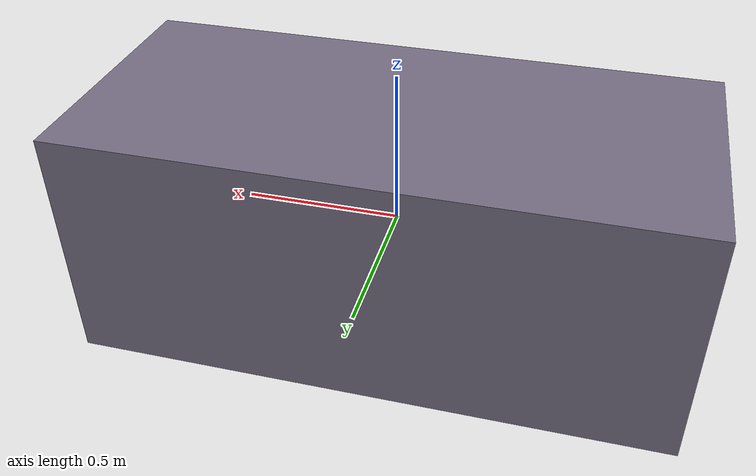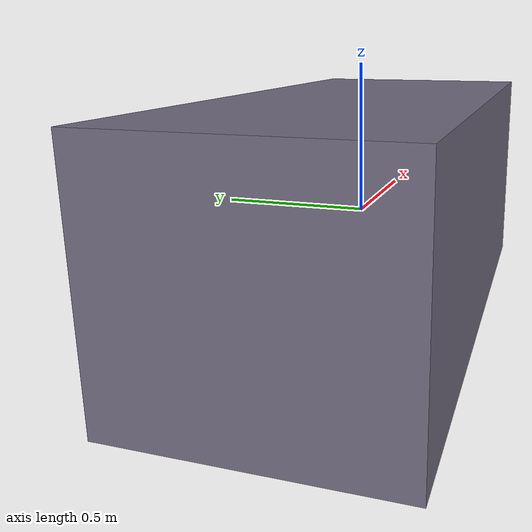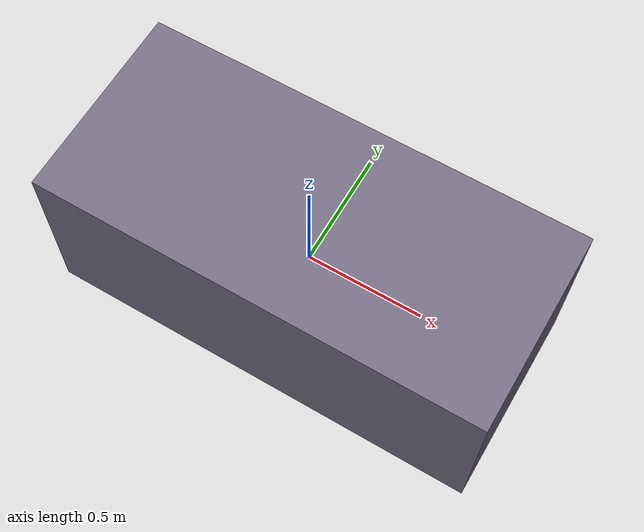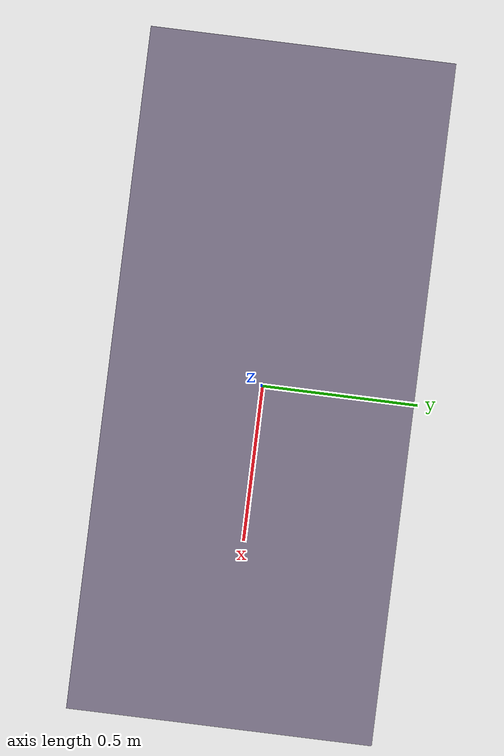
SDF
<?xml version="1.0"?>
<sdf version="1.6">
  <model name="lounge_sofa_b">
    <static>true</static>
    <link name="link">
      <collision name="col">
        <geometry>
          <box>
            <size>1.9 0.85 0.78</size>
          </box>
        </geometry>
      </collision>
      <visual name="vis">
        <geometry>
          <box>
            <size>1.9 0.85 0.78</size>
          </box>
        </geometry>
        <material>
          <ambient>0.45 0.42 0.5 1</ambient>
          <diffuse>0.45 0.42 0.5 1</diffuse>
        </material>
      </visual>
    </link>
  </model>
</sdf>
